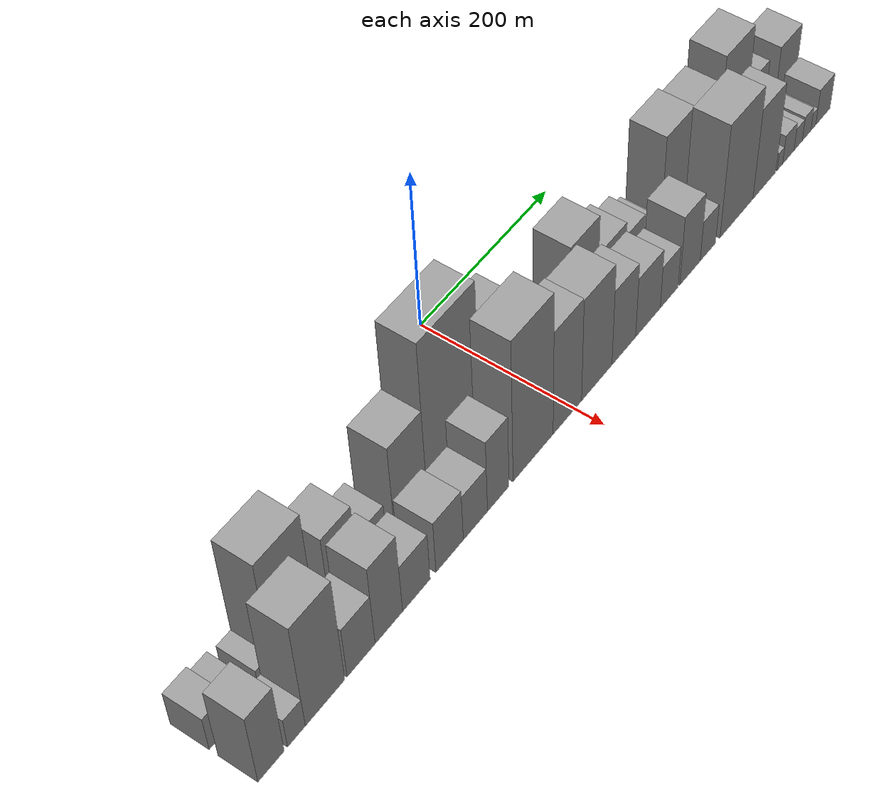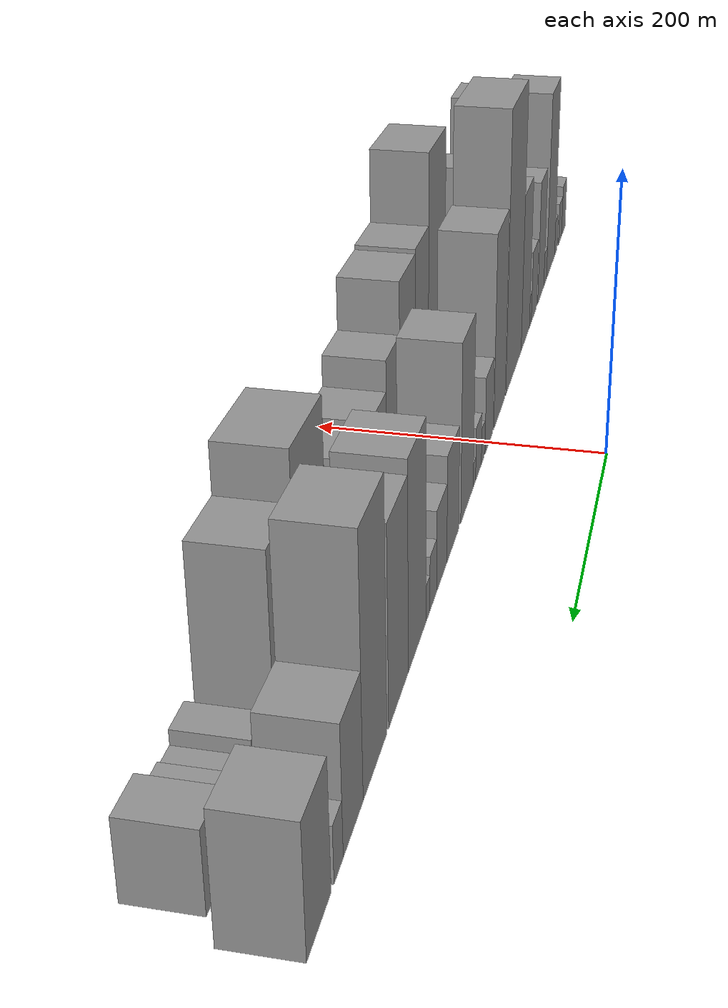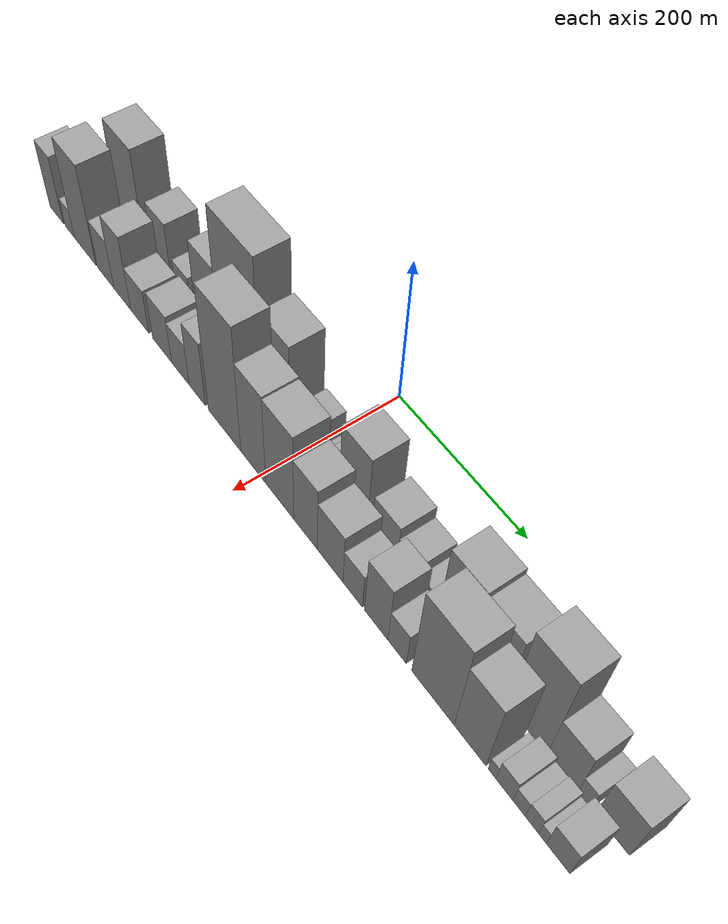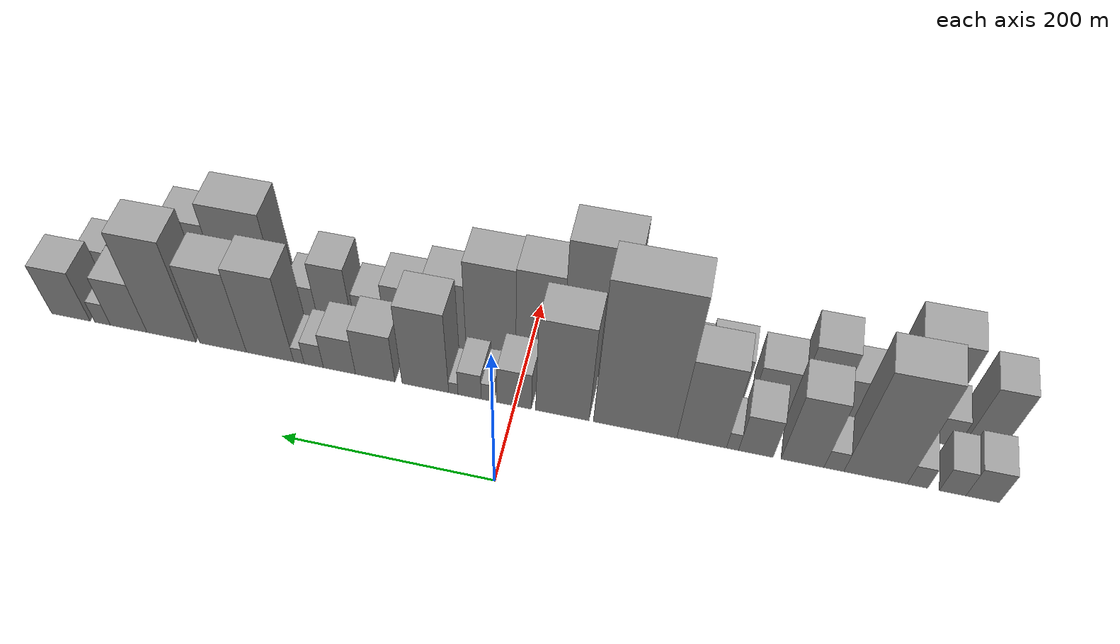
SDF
<sdf version="1.6">
 <world name="default">
  <scene>
   <sky><clouds><speed>12</speed></clouds></sky>
   <ambient>0.4 0.4 0.4 1</ambient>
   <background>0.7 0.7 0.7 1</background>
   <shadows>1</shadows>
  </scene>
  <gravity>0 0 -9.8066</gravity>
  <magnetic_field>6e-06 2.3e-05 -4.2e-05</magnetic_field>
  <physics default="0" name="default_physics" type="ode">
   <ode>
    <solver>
     <type>quick</type>
     <iters>10</iters>
     <sor>1.0</sor>
     <use_dynamic_moi_rescaling>0</use_dynamic_moi_rescaling>
    </solver>
    <constraints>
     <cfm>0</cfm>
     <erp>0.2</erp>
     <contact_max_correcting_vel>100</contact_max_correcting_vel>
     <contact_surface_layer>0.001</contact_surface_layer>
    </constraints>
   </ode>
   <max_step_size>0.004</max_step_size>
   <real_time_factor>1</real_time_factor>
   <real_time_update_rate>250</real_time_update_rate>
  </physics>
  <light name="sun" type="directional">
   <pose>0 0 10 0 0 0</pose>
   <diffuse>0.8 0.8 0.8 1</diffuse>
   <specular>0.2 0.2 0.2 1</specular>
   <attenuation>
    <range>1000</range>
    <constant>0.9</constant>
    <linear>0.01</linear>
    <quadratic>0.001</quadratic>
   </attenuation>
   <direction>-0.5 0.1 -0.9</direction>
  </light>
  <model name="building_1">
   <static>1</static>
   <pose>100.0000 -423.6556 0 0.000000 0.000000 0.000000</pose>
   <link name="link">
    <pose>0 0 24.00 0 0 0</pose>
    <collision name="collision"><geometry><box><size>40.0000 28.6887 48.0000</size></box></geometry></collision>
    <visual name="visual">
     <cast_shadows>0</cast_shadows>
     <geometry><box><size>40.0000 28.6887 48.0000</size></box></geometry>
     <material>
      <script>
       <uri>model://grey_wall/materials/scripts</uri>
       <uri>model://grey_wall/materials/textures</uri>
       <name>vrc/grey_wall</name>
      </script>
     </material>
    </visual>
   </link>
  </model>
  <model name="building_2">
   <static>1</static>
   <pose>100.0000 -397.8716 0 0.000000 0.000000 0.000000</pose>
   <link name="link">
    <pose>0 0 19.50 0 0 0</pose>
    <collision name="collision"><geometry><box><size>40.0000 22.8792 39.0000</size></box></geometry></collision>
    <visual name="visual">
     <cast_shadows>0</cast_shadows>
     <geometry><box><size>40.0000 22.8792 39.0000</size></box></geometry>
     <material>
      <script>
       <uri>model://grey_wall/materials/scripts</uri>
       <uri>model://grey_wall/materials/textures</uri>
       <name>vrc/grey_wall</name>
      </script>
     </material>
    </visual>
   </link>
  </model>
  <model name="building_3">
   <static>1</static>
   <pose>100.0000 -367.3331 0 0.000000 0.000000 0.000000</pose>
   <link name="link">
    <pose>0 0 16.50 0 0 0</pose>
    <collision name="collision"><geometry><box><size>40.0000 18.1978 33.0000</size></box></geometry></collision>
    <visual name="visual">
     <cast_shadows>0</cast_shadows>
     <geometry><box><size>40.0000 18.1978 33.0000</size></box></geometry>
     <material>
      <script>
       <uri>model://grey_wall/materials/scripts</uri>
       <uri>model://grey_wall/materials/textures</uri>
       <name>vrc/grey_wall</name>
      </script>
     </material>
    </visual>
   </link>
  </model>
  <model name="building_4">
   <static>1</static>
   <pose>100.0000 -330.5136 0 0.000000 0.000000 0.000000</pose>
   <link name="link">
    <pose>0 0 81.00 0 0 0</pose>
    <collision name="collision"><geometry><box><size>40.0000 55.4412 162.0000</size></box></geometry></collision>
    <visual name="visual">
     <cast_shadows>0</cast_shadows>
     <geometry><box><size>40.0000 55.4412 162.0000</size></box></geometry>
     <material>
      <script>
       <uri>model://grey_wall/materials/scripts</uri>
       <uri>model://grey_wall/materials/textures</uri>
       <name>vrc/grey_wall</name>
      </script>
     </material>
    </visual>
   </link>
  </model>
  <model name="building_5">
   <static>1</static>
   <pose>100.0000 -293.9951 0 0.000000 0.000000 0.000000</pose>
   <link name="link">
    <pose>0 0 15.00 0 0 0</pose>
    <collision name="collision"><geometry><box><size>40.0000 17.5958 30.0000</size></box></geometry></collision>
    <visual name="visual">
     <cast_shadows>0</cast_shadows>
     <geometry><box><size>40.0000 17.5958 30.0000</size></box></geometry>
     <material>
      <script>
       <uri>model://grey_wall/materials/scripts</uri>
       <uri>model://grey_wall/materials/textures</uri>
       <name>vrc/grey_wall</name>
      </script>
     </material>
    </visual>
   </link>
  </model>
  <model name="building_6">
   <static>1</static>
   <pose>100.0000 -265.9767 0 0.000000 0.000000 0.000000</pose>
   <link name="link">
    <pose>0 0 52.50 0 0 0</pose>
    <collision name="collision"><geometry><box><size>40.0000 38.4410 105.0000</size></box></geometry></collision>
    <visual name="visual">
     <cast_shadows>0</cast_shadows>
     <geometry><box><size>40.0000 38.4410 105.0000</size></box></geometry>
     <material>
      <script>
       <uri>model://grey_wall/materials/scripts</uri>
       <uri>model://grey_wall/materials/textures</uri>
       <name>vrc/grey_wall</name>
      </script>
     </material>
    </visual>
   </link>
  </model>
  <model name="building_7">
   <static>1</static>
   <pose>100.0000 -224.0605 0 0.000000 0.000000 0.000000</pose>
   <link name="link">
    <pose>0 0 30.00 0 0 0</pose>
    <collision name="collision"><geometry><box><size>40.0000 31.3915 60.0000</size></box></geometry></collision>
    <visual name="visual">
     <cast_shadows>0</cast_shadows>
     <geometry><box><size>40.0000 31.3915 60.0000</size></box></geometry>
     <material>
      <script>
       <uri>model://grey_wall/materials/scripts</uri>
       <uri>model://grey_wall/materials/textures</uri>
       <name>vrc/grey_wall</name>
      </script>
     </material>
    </visual>
   </link>
  </model>
  <model name="building_8">
   <static>1</static>
   <pose>100.0000 -202.9169 0 0.000000 0.000000 0.000000</pose>
   <link name="link">
    <pose>0 0 13.50 0 0 0</pose>
    <collision name="collision"><geometry><box><size>40.0000 10.8956 27.0000</size></box></geometry></collision>
    <visual name="visual">
     <cast_shadows>0</cast_shadows>
     <geometry><box><size>40.0000 10.8956 27.0000</size></box></geometry>
     <material>
      <script>
       <uri>model://grey_wall/materials/scripts</uri>
       <uri>model://grey_wall/materials/textures</uri>
       <name>vrc/grey_wall</name>
      </script>
     </material>
    </visual>
   </link>
  </model>
  <model name="building_9">
   <static>1</static>
   <pose>100.0000 -174.7409 0 0.000000 0.000000 0.000000</pose>
   <link name="link">
    <pose>0 0 63.00 0 0 0</pose>
    <collision name="collision"><geometry><box><size>40.0000 45.4563 126.0000</size></box></geometry></collision>
    <visual name="visual">
     <cast_shadows>0</cast_shadows>
     <geometry><box><size>40.0000 45.4563 126.0000</size></box></geometry>
     <material>
      <script>
       <uri>model://grey_wall/materials/scripts</uri>
       <uri>model://grey_wall/materials/textures</uri>
       <name>vrc/grey_wall</name>
      </script>
     </material>
    </visual>
   </link>
  </model>
  <model name="building_10">
   <static>1</static>
   <pose>100.0000 -113.2234 0 0.000000 0.000000 0.000000</pose>
   <link name="link">
    <pose>0 0 106.50 0 0 0</pose>
    <collision name="collision"><geometry><box><size>40.0000 77.5786 213.0000</size></box></geometry></collision>
    <visual name="visual">
     <cast_shadows>0</cast_shadows>
     <geometry><box><size>40.0000 77.5786 213.0000</size></box></geometry>
     <material>
      <script>
       <uri>model://grey_wall/materials/scripts</uri>
       <uri>model://grey_wall/materials/textures</uri>
       <name>vrc/grey_wall</name>
      </script>
     </material>
    </visual>
   </link>
  </model>
  <model name="building_11">
   <static>1</static>
   <pose>100.0000 -45.1588 0 0.000000 0.000000 0.000000</pose>
   <link name="link">
    <pose>0 0 72.00 0 0 0</pose>
    <collision name="collision"><geometry><box><size>40.0000 50.5507 144.0000</size></box></geometry></collision>
    <visual name="visual">
     <cast_shadows>0</cast_shadows>
     <geometry><box><size>40.0000 50.5507 144.0000</size></box></geometry>
     <material>
      <script>
       <uri>model://grey_wall/materials/scripts</uri>
       <uri>model://grey_wall/materials/textures</uri>
       <name>vrc/grey_wall</name>
      </script>
     </material>
    </visual>
   </link>
  </model>
  <model name="building_12">
   <static>1</static>
   <pose>100.0000 0.6023 0 0.000000 0.000000 0.000000</pose>
   <link name="link">
    <pose>0 0 28.50 0 0 0</pose>
    <collision name="collision"><geometry><box><size>40.0000 32.9714 57.0000</size></box></geometry></collision>
    <visual name="visual">
     <cast_shadows>0</cast_shadows>
     <geometry><box><size>40.0000 32.9714 57.0000</size></box></geometry>
     <material>
      <script>
       <uri>model://grey_wall/materials/scripts</uri>
       <uri>model://grey_wall/materials/textures</uri>
       <name>vrc/grey_wall</name>
      </script>
     </material>
    </visual>
   </link>
  </model>
  <model name="building_13">
   <static>1</static>
   <pose>100.0000 26.1027 0 0.000000 0.000000 0.000000</pose>
   <link name="link">
    <pose>0 0 13.50 0 0 0</pose>
    <collision name="collision"><geometry><box><size>40.0000 12.0294 27.0000</size></box></geometry></collision>
    <visual name="visual">
     <cast_shadows>0</cast_shadows>
     <geometry><box><size>40.0000 12.0294 27.0000</size></box></geometry>
     <material>
      <script>
       <uri>model://grey_wall/materials/scripts</uri>
       <uri>model://grey_wall/materials/textures</uri>
       <name>vrc/grey_wall</name>
      </script>
     </material>
    </visual>
   </link>
  </model>
  <model name="building_14">
   <static>1</static>
   <pose>100.0000 43.3374 0 0.000000 0.000000 0.000000</pose>
   <link name="link">
    <pose>0 0 19.50 0 0 0</pose>
    <collision name="collision"><geometry><box><size>40.0000 22.4401 39.0000</size></box></geometry></collision>
    <visual name="visual">
     <cast_shadows>0</cast_shadows>
     <geometry><box><size>40.0000 22.4401 39.0000</size></box></geometry>
     <material>
      <script>
       <uri>model://grey_wall/materials/scripts</uri>
       <uri>model://grey_wall/materials/textures</uri>
       <name>vrc/grey_wall</name>
      </script>
     </material>
    </visual>
   </link>
  </model>
  <model name="building_15">
   <static>1</static>
   <pose>100.0000 59.0498 0 0.000000 0.000000 0.000000</pose>
   <link name="link">
    <pose>0 0 9.00 0 0 0</pose>
    <collision name="collision"><geometry><box><size>40.0000 8.9847 18.0000</size></box></geometry></collision>
    <visual name="visual">
     <cast_shadows>0</cast_shadows>
     <geometry><box><size>40.0000 8.9847 18.0000</size></box></geometry>
     <material>
      <script>
       <uri>model://grey_wall/materials/scripts</uri>
       <uri>model://grey_wall/materials/textures</uri>
       <name>vrc/grey_wall</name>
      </script>
     </material>
    </visual>
   </link>
  </model>
  <model name="building_16">
   <static>1</static>
   <pose>100.0000 86.3163 0 0.000000 0.000000 0.000000</pose>
   <link name="link">
    <pose>0 0 61.50 0 0 0</pose>
    <collision name="collision"><geometry><box><size>40.0000 45.5483 123.0000</size></box></geometry></collision>
    <visual name="visual">
     <cast_shadows>0</cast_shadows>
     <geometry><box><size>40.0000 45.5483 123.0000</size></box></geometry>
     <material>
      <script>
       <uri>model://grey_wall/materials/scripts</uri>
       <uri>model://grey_wall/materials/textures</uri>
       <name>vrc/grey_wall</name>
      </script>
     </material>
    </visual>
   </link>
  </model>
  <model name="building_17">
   <static>1</static>
   <pose>100.0000 135.6190 0 0.000000 0.000000 0.000000</pose>
   <link name="link">
    <pose>0 0 36.00 0 0 0</pose>
    <collision name="collision"><geometry><box><size>40.0000 39.0570 72.0000</size></box></geometry></collision>
    <visual name="visual">
     <cast_shadows>0</cast_shadows>
     <geometry><box><size>40.0000 39.0570 72.0000</size></box></geometry>
     <material>
      <script>
       <uri>model://grey_wall/materials/scripts</uri>
       <uri>model://grey_wall/materials/textures</uri>
       <name>vrc/grey_wall</name>
      </script>
     </material>
    </visual>
   </link>
  </model>
  <model name="building_18">
   <static>1</static>
   <pose>100.0000 171.1100 0 0.000000 0.000000 0.000000</pose>
   <link name="link">
    <pose>0 0 27.00 0 0 0</pose>
    <collision name="collision"><geometry><box><size>40.0000 31.9250 54.0000</size></box></geometry></collision>
    <visual name="visual">
     <cast_shadows>0</cast_shadows>
     <geometry><box><size>40.0000 31.9250 54.0000</size></box></geometry>
     <material>
      <script>
       <uri>model://grey_wall/materials/scripts</uri>
       <uri>model://grey_wall/materials/textures</uri>
       <name>vrc/grey_wall</name>
      </script>
     </material>
    </visual>
   </link>
  </model>
  <model name="building_19">
   <static>1</static>
   <pose>100.0000 196.7690 0 0.000000 0.000000 0.000000</pose>
   <link name="link">
    <pose>0 0 18.00 0 0 0</pose>
    <collision name="collision"><geometry><box><size>40.0000 19.3929 36.0000</size></box></geometry></collision>
    <visual name="visual">
     <cast_shadows>0</cast_shadows>
     <geometry><box><size>40.0000 19.3929 36.0000</size></box></geometry>
     <material>
      <script>
       <uri>model://grey_wall/materials/scripts</uri>
       <uri>model://grey_wall/materials/textures</uri>
       <name>vrc/grey_wall</name>
      </script>
     </material>
    </visual>
   </link>
  </model>
  <model name="building_20">
   <static>1</static>
   <pose>100.0000 211.7643 0 0.000000 0.000000 0.000000</pose>
   <link name="link">
    <pose>0 0 12.00 0 0 0</pose>
    <collision name="collision"><geometry><box><size>40.0000 10.5976 24.0000</size></box></geometry></collision>
    <visual name="visual">
     <cast_shadows>0</cast_shadows>
     <geometry><box><size>40.0000 10.5976 24.0000</size></box></geometry>
     <material>
      <script>
       <uri>model://grey_wall/materials/scripts</uri>
       <uri>model://grey_wall/materials/textures</uri>
       <name>vrc/grey_wall</name>
      </script>
     </material>
    </visual>
   </link>
  </model>
  <model name="building_21">
   <static>1</static>
   <pose>100.0000 240.9793 0 0.000000 0.000000 0.000000</pose>
   <link name="link">
    <pose>0 0 64.50 0 0 0</pose>
    <collision name="collision"><geometry><box><size>40.0000 47.8324 129.0000</size></box></geometry></collision>
    <visual name="visual">
     <cast_shadows>0</cast_shadows>
     <geometry><box><size>40.0000 47.8324 129.0000</size></box></geometry>
     <material>
      <script>
       <uri>model://grey_wall/materials/scripts</uri>
       <uri>model://grey_wall/materials/textures</uri>
       <name>vrc/grey_wall</name>
      </script>
     </material>
    </visual>
   </link>
  </model>
  <model name="building_22">
   <static>1</static>
   <pose>100.0000 288.8334 0 0.000000 0.000000 0.000000</pose>
   <link name="link">
    <pose>0 0 60.00 0 0 0</pose>
    <collision name="collision"><geometry><box><size>40.0000 47.8759 120.0000</size></box></geometry></collision>
    <visual name="visual">
     <cast_shadows>0</cast_shadows>
     <geometry><box><size>40.0000 47.8759 120.0000</size></box></geometry>
     <material>
      <script>
       <uri>model://grey_wall/materials/scripts</uri>
       <uri>model://grey_wall/materials/textures</uri>
       <name>vrc/grey_wall</name>
      </script>
     </material>
    </visual>
   </link>
  </model>
  <model name="building_23">
   <static>1</static>
   <pose>100.0000 342.2572 0 0.000000 0.000000 0.000000</pose>
   <link name="link">
    <pose>0 0 75.00 0 0 0</pose>
    <collision name="collision"><geometry><box><size>40.0000 50.9718 150.0000</size></box></geometry></collision>
    <visual name="visual">
     <cast_shadows>0</cast_shadows>
     <geometry><box><size>40.0000 50.9718 150.0000</size></box></geometry>
     <material>
      <script>
       <uri>model://grey_wall/materials/scripts</uri>
       <uri>model://grey_wall/materials/textures</uri>
       <name>vrc/grey_wall</name>
      </script>
     </material>
    </visual>
   </link>
  </model>
  <model name="building_24">
   <static>1</static>
   <pose>100.0000 386.9692 0 0.000000 0.000000 0.000000</pose>
   <link name="link">
    <pose>0 0 37.50 0 0 0</pose>
    <collision name="collision"><geometry><box><size>40.0000 38.4520 75.0000</size></box></geometry></collision>
    <visual name="visual">
     <cast_shadows>0</cast_shadows>
     <geometry><box><size>40.0000 38.4520 75.0000</size></box></geometry>
     <material>
      <script>
       <uri>model://grey_wall/materials/scripts</uri>
       <uri>model://grey_wall/materials/textures</uri>
       <name>vrc/grey_wall</name>
      </script>
     </material>
    </visual>
   </link>
  </model>
  <model name="building_25">
   <static>1</static>
   <pose>100.0000 414.5128 0 0.000000 0.000000 0.000000</pose>
   <link name="link">
    <pose>0 0 16.50 0 0 0</pose>
    <collision name="collision"><geometry><box><size>40.0000 16.6353 33.0000</size></box></geometry></collision>
    <visual name="visual">
     <cast_shadows>0</cast_shadows>
     <geometry><box><size>40.0000 16.6353 33.0000</size></box></geometry>
     <material>
      <script>
       <uri>model://grey_wall/materials/scripts</uri>
       <uri>model://grey_wall/materials/textures</uri>
       <name>vrc/grey_wall</name>
      </script>
     </material>
    </visual>
   </link>
  </model>
  <model name="building_26">
   <static>1</static>
   <pose>100.0000 448.2294 0 0.000000 0.000000 0.000000</pose>
   <link name="link">
    <pose>0 0 37.50 0 0 0</pose>
    <collision name="collision"><geometry><box><size>40.0000 40.7977 75.0000</size></box></geometry></collision>
    <visual name="visual">
     <cast_shadows>0</cast_shadows>
     <geometry><box><size>40.0000 40.7977 75.0000</size></box></geometry>
     <material>
      <script>
       <uri>model://grey_wall/materials/scripts</uri>
       <uri>model://grey_wall/materials/textures</uri>
       <name>vrc/grey_wall</name>
      </script>
     </material>
    </visual>
   </link>
  </model>
  <model name="building_27">
   <static>1</static>
   <pose>149.0000 -421.8023 0 0.000000 0.000000 0.000000</pose>
   <link name="link">
    <pose>0 0 49.50 0 0 0</pose>
    <collision name="collision"><geometry><box><size>40.0000 32.3954 99.0000</size></box></geometry></collision>
    <visual name="visual">
     <cast_shadows>0</cast_shadows>
     <geometry><box><size>40.0000 32.3954 99.0000</size></box></geometry>
     <material>
      <script>
       <uri>model://grey_wall/materials/scripts</uri>
       <uri>model://grey_wall/materials/textures</uri>
       <name>vrc/grey_wall</name>
      </script>
     </material>
    </visual>
   </link>
  </model>
  <model name="building_28">
   <static>1</static>
   <pose>149.0000 -390.4659 0 0.000000 0.000000 0.000000</pose>
   <link name="link">
    <pose>0 0 21.00 0 0 0</pose>
    <collision name="collision"><geometry><box><size>40.0000 22.2773 42.0000</size></box></geometry></collision>
    <visual name="visual">
     <cast_shadows>0</cast_shadows>
     <geometry><box><size>40.0000 22.2773 42.0000</size></box></geometry>
     <material>
      <script>
       <uri>model://grey_wall/materials/scripts</uri>
       <uri>model://grey_wall/materials/textures</uri>
       <name>vrc/grey_wall</name>
      </script>
     </material>
    </visual>
   </link>
  </model>
  <model name="building_29">
   <static>1</static>
   <pose>149.0000 -354.1572 0 0.000000 0.000000 0.000000</pose>
   <link name="link">
    <pose>0 0 73.50 0 0 0</pose>
    <collision name="collision"><geometry><box><size>40.0000 50.3402 147.0000</size></box></geometry></collision>
    <visual name="visual">
     <cast_shadows>0</cast_shadows>
     <geometry><box><size>40.0000 50.3402 147.0000</size></box></geometry>
     <material>
      <script>
       <uri>model://grey_wall/materials/scripts</uri>
       <uri>model://grey_wall/materials/textures</uri>
       <name>vrc/grey_wall</name>
      </script>
     </material>
    </visual>
   </link>
  </model>
  <model name="building_30">
   <static>1</static>
   <pose>149.0000 -307.5326 0 0.000000 0.000000 0.000000</pose>
   <link name="link">
    <pose>0 0 36.00 0 0 0</pose>
    <collision name="collision"><geometry><box><size>40.0000 36.9091 72.0000</size></box></geometry></collision>
    <visual name="visual">
     <cast_shadows>0</cast_shadows>
     <geometry><box><size>40.0000 36.9091 72.0000</size></box></geometry>
     <material>
      <script>
       <uri>model://grey_wall/materials/scripts</uri>
       <uri>model://grey_wall/materials/textures</uri>
       <name>vrc/grey_wall</name>
      </script>
     </material>
    </visual>
   </link>
  </model>
  <model name="building_31">
   <static>1</static>
   <pose>149.0000 -270.6092 0 0.000000 0.000000 0.000000</pose>
   <link name="link">
    <pose>0 0 55.50 0 0 0</pose>
    <collision name="collision"><geometry><box><size>40.0000 36.9377 111.0000</size></box></geometry></collision>
    <visual name="visual">
     <cast_shadows>0</cast_shadows>
     <geometry><box><size>40.0000 36.9377 111.0000</size></box></geometry>
     <material>
      <script>
       <uri>model://grey_wall/materials/scripts</uri>
       <uri>model://grey_wall/materials/textures</uri>
       <name>vrc/grey_wall</name>
      </script>
     </material>
    </visual>
   </link>
  </model>
  <model name="building_32">
   <static>1</static>
   <pose>149.0000 -233.1537 0 0.000000 0.000000 0.000000</pose>
   <link name="link">
    <pose>0 0 33.00 0 0 0</pose>
    <collision name="collision"><geometry><box><size>40.0000 37.9732 66.0000</size></box></geometry></collision>
    <visual name="visual">
     <cast_shadows>0</cast_shadows>
     <geometry><box><size>40.0000 37.9732 66.0000</size></box></geometry>
     <material>
      <script>
       <uri>model://grey_wall/materials/scripts</uri>
       <uri>model://grey_wall/materials/textures</uri>
       <name>vrc/grey_wall</name>
      </script>
     </material>
    </visual>
   </link>
  </model>
  <model name="building_33">
   <static>1</static>
   <pose>149.0000 -186.8201 0 0.000000 0.000000 0.000000</pose>
   <link name="link">
    <pose>0 0 36.00 0 0 0</pose>
    <collision name="collision"><geometry><box><size>40.0000 38.6940 72.0000</size></box></geometry></collision>
    <visual name="visual">
     <cast_shadows>0</cast_shadows>
     <geometry><box><size>40.0000 38.6940 72.0000</size></box></geometry>
     <material>
      <script>
       <uri>model://grey_wall/materials/scripts</uri>
       <uri>model://grey_wall/materials/textures</uri>
       <name>vrc/grey_wall</name>
      </script>
     </material>
    </visual>
   </link>
  </model>
  <model name="building_34">
   <static>1</static>
   <pose>149.0000 -149.9987 0 0.000000 0.000000 0.000000</pose>
   <link name="link">
    <pose>0 0 31.50 0 0 0</pose>
    <collision name="collision"><geometry><box><size>40.0000 34.9489 63.0000</size></box></geometry></collision>
    <visual name="visual">
     <cast_shadows>0</cast_shadows>
     <geometry><box><size>40.0000 34.9489 63.0000</size></box></geometry>
     <material>
      <script>
       <uri>model://grey_wall/materials/scripts</uri>
       <uri>model://grey_wall/materials/textures</uri>
       <name>vrc/grey_wall</name>
      </script>
     </material>
    </visual>
   </link>
  </model>
  <model name="building_35">
   <static>1</static>
   <pose>149.0000 -116.6894 0 0.000000 0.000000 0.000000</pose>
   <link name="link">
    <pose>0 0 49.50 0 0 0</pose>
    <collision name="collision"><geometry><box><size>40.0000 31.6697 99.0000</size></box></geometry></collision>
    <visual name="visual">
     <cast_shadows>0</cast_shadows>
     <geometry><box><size>40.0000 31.6697 99.0000</size></box></geometry>
     <material>
      <script>
       <uri>model://grey_wall/materials/scripts</uri>
       <uri>model://grey_wall/materials/textures</uri>
       <name>vrc/grey_wall</name>
      </script>
     </material>
    </visual>
   </link>
  </model>
  <model name="building_36">
   <static>1</static>
   <pose>149.0000 -64.4951 0 0.000000 0.000000 0.000000</pose>
   <link name="link">
    <pose>0 0 96.00 0 0 0</pose>
    <collision name="collision"><geometry><box><size>40.0000 60.7190 192.0000</size></box></geometry></collision>
    <visual name="visual">
     <cast_shadows>0</cast_shadows>
     <geometry><box><size>40.0000 60.7190 192.0000</size></box></geometry>
     <material>
      <script>
       <uri>model://grey_wall/materials/scripts</uri>
       <uri>model://grey_wall/materials/textures</uri>
       <name>vrc/grey_wall</name>
      </script>
     </material>
    </visual>
   </link>
  </model>
  <model name="building_37">
   <static>1</static>
   <pose>149.0000 -11.9089 0 0.000000 0.000000 0.000000</pose>
   <link name="link">
    <pose>0 0 70.50 0 0 0</pose>
    <collision name="collision"><geometry><box><size>40.0000 44.4533 141.0000</size></box></geometry></collision>
    <visual name="visual">
     <cast_shadows>0</cast_shadows>
     <geometry><box><size>40.0000 44.4533 141.0000</size></box></geometry>
     <material>
      <script>
       <uri>model://grey_wall/materials/scripts</uri>
       <uri>model://grey_wall/materials/textures</uri>
       <name>vrc/grey_wall</name>
      </script>
     </material>
    </visual>
   </link>
  </model>
  <model name="building_38">
   <static>1</static>
   <pose>149.0000 34.6893 0 0.000000 0.000000 0.000000</pose>
   <link name="link">
    <pose>0 0 69.00 0 0 0</pose>
    <collision name="collision"><geometry><box><size>40.0000 48.7433 138.0000</size></box></geometry></collision>
    <visual name="visual">
     <cast_shadows>0</cast_shadows>
     <geometry><box><size>40.0000 48.7433 138.0000</size></box></geometry>
     <material>
      <script>
       <uri>model://grey_wall/materials/scripts</uri>
       <uri>model://grey_wall/materials/textures</uri>
       <name>vrc/grey_wall</name>
      </script>
     </material>
    </visual>
   </link>
  </model>
  <model name="building_39">
   <static>1</static>
   <pose>149.0000 78.5258 0 0.000000 0.000000 0.000000</pose>
   <link name="link">
    <pose>0 0 51.00 0 0 0</pose>
    <collision name="collision"><geometry><box><size>40.0000 38.9297 102.0000</size></box></geometry></collision>
    <visual name="visual">
     <cast_shadows>0</cast_shadows>
     <geometry><box><size>40.0000 38.9297 102.0000</size></box></geometry>
     <material>
      <script>
       <uri>model://grey_wall/materials/scripts</uri>
       <uri>model://grey_wall/materials/textures</uri>
       <name>vrc/grey_wall</name>
      </script>
     </material>
    </visual>
   </link>
  </model>
  <model name="building_40">
   <static>1</static>
   <pose>149.0000 118.7123 0 0.000000 0.000000 0.000000</pose>
   <link name="link">
    <pose>0 0 40.50 0 0 0</pose>
    <collision name="collision"><geometry><box><size>40.0000 41.4432 81.0000</size></box></geometry></collision>
    <visual name="visual">
     <cast_shadows>0</cast_shadows>
     <geometry><box><size>40.0000 41.4432 81.0000</size></box></geometry>
     <material>
      <script>
       <uri>model://grey_wall/materials/scripts</uri>
       <uri>model://grey_wall/materials/textures</uri>
       <name>vrc/grey_wall</name>
      </script>
     </material>
    </visual>
   </link>
  </model>
  <model name="building_41">
   <static>1</static>
   <pose>149.0000 154.7037 0 0.000000 0.000000 0.000000</pose>
   <link name="link">
    <pose>0 0 28.50 0 0 0</pose>
    <collision name="collision"><geometry><box><size>40.0000 30.5398 57.0000</size></box></geometry></collision>
    <visual name="visual">
     <cast_shadows>0</cast_shadows>
     <geometry><box><size>40.0000 30.5398 57.0000</size></box></geometry>
     <material>
      <script>
       <uri>model://grey_wall/materials/scripts</uri>
       <uri>model://grey_wall/materials/textures</uri>
       <name>vrc/grey_wall</name>
      </script>
     </material>
    </visual>
   </link>
  </model>
  <model name="building_42">
   <static>1</static>
   <pose>149.0000 190.7265 0 0.000000 0.000000 0.000000</pose>
   <link name="link">
    <pose>0 0 46.50 0 0 0</pose>
    <collision name="collision"><geometry><box><size>40.0000 35.5057 93.0000</size></box></geometry></collision>
    <visual name="visual">
     <cast_shadows>0</cast_shadows>
     <geometry><box><size>40.0000 35.5057 93.0000</size></box></geometry>
     <material>
      <script>
       <uri>model://grey_wall/materials/scripts</uri>
       <uri>model://grey_wall/materials/textures</uri>
       <name>vrc/grey_wall</name>
      </script>
     </material>
    </visual>
   </link>
  </model>
  <model name="building_43">
   <static>1</static>
   <pose>149.0000 222.1481 0 0.000000 0.000000 0.000000</pose>
   <link name="link">
    <pose>0 0 27.00 0 0 0</pose>
    <collision name="collision"><geometry><box><size>40.0000 27.3376 54.0000</size></box></geometry></collision>
    <visual name="visual">
     <cast_shadows>0</cast_shadows>
     <geometry><box><size>40.0000 27.3376 54.0000</size></box></geometry>
     <material>
      <script>
       <uri>model://grey_wall/materials/scripts</uri>
       <uri>model://grey_wall/materials/textures</uri>
       <name>vrc/grey_wall</name>
      </script>
     </material>
    </visual>
   </link>
  </model>
  <model name="building_44">
   <static>1</static>
   <pose>149.0000 273.7868 0 0.000000 0.000000 0.000000</pose>
   <link name="link">
    <pose>0 0 75.00 0 0 0</pose>
    <collision name="collision"><geometry><box><size>40.0000 59.9398 150.0000</size></box></geometry></collision>
    <visual name="visual">
     <cast_shadows>0</cast_shadows>
     <geometry><box><size>40.0000 59.9398 150.0000</size></box></geometry>
     <material>
      <script>
       <uri>model://grey_wall/materials/scripts</uri>
       <uri>model://grey_wall/materials/textures</uri>
       <name>vrc/grey_wall</name>
      </script>
     </material>
    </visual>
   </link>
  </model>
  <model name="building_45">
   <static>1</static>
   <pose>149.0000 325.1257 0 0.000000 0.000000 0.000000</pose>
   <link name="link">
    <pose>0 0 60.00 0 0 0</pose>
    <collision name="collision"><geometry><box><size>40.0000 42.7380 120.0000</size></box></geometry></collision>
    <visual name="visual">
     <cast_shadows>0</cast_shadows>
     <geometry><box><size>40.0000 42.7380 120.0000</size></box></geometry>
     <material>
      <script>
       <uri>model://grey_wall/materials/scripts</uri>
       <uri>model://grey_wall/materials/textures</uri>
       <name>vrc/grey_wall</name>
      </script>
     </material>
    </visual>
   </link>
  </model>
  <model name="building_46">
   <static>1</static>
   <pose>149.0000 354.5893 0 0.000000 0.000000 0.000000</pose>
   <link name="link">
    <pose>0 0 12.00 0 0 0</pose>
    <collision name="collision"><geometry><box><size>40.0000 10.1891 24.0000</size></box></geometry></collision>
    <visual name="visual">
     <cast_shadows>0</cast_shadows>
     <geometry><box><size>40.0000 10.1891 24.0000</size></box></geometry>
     <material>
      <script>
       <uri>model://grey_wall/materials/scripts</uri>
       <uri>model://grey_wall/materials/textures</uri>
       <name>vrc/grey_wall</name>
      </script>
     </material>
    </visual>
   </link>
  </model>
  <model name="building_47">
   <static>1</static>
   <pose>149.0000 370.6328 0 0.000000 0.000000 0.000000</pose>
   <link name="link">
    <pose>0 0 19.50 0 0 0</pose>
    <collision name="collision"><geometry><box><size>40.0000 21.8979 39.0000</size></box></geometry></collision>
    <visual name="visual">
     <cast_shadows>0</cast_shadows>
     <geometry><box><size>40.0000 21.8979 39.0000</size></box></geometry>
     <material>
      <script>
       <uri>model://grey_wall/materials/scripts</uri>
       <uri>model://grey_wall/materials/textures</uri>
       <name>vrc/grey_wall</name>
      </script>
     </material>
    </visual>
   </link>
  </model>
  <model name="building_48">
   <static>1</static>
   <pose>149.0000 389.5400 0 0.000000 0.000000 0.000000</pose>
   <link name="link">
    <pose>0 0 15.00 0 0 0</pose>
    <collision name="collision"><geometry><box><size>40.0000 15.9164 30.0000</size></box></geometry></collision>
    <visual name="visual">
     <cast_shadows>0</cast_shadows>
     <geometry><box><size>40.0000 15.9164 30.0000</size></box></geometry>
     <material>
      <script>
       <uri>model://grey_wall/materials/scripts</uri>
       <uri>model://grey_wall/materials/textures</uri>
       <name>vrc/grey_wall</name>
      </script>
     </material>
    </visual>
   </link>
  </model>
  <model name="building_49">
   <static>1</static>
   <pose>149.0000 405.7886 0 0.000000 0.000000 0.000000</pose>
   <link name="link">
    <pose>0 0 16.50 0 0 0</pose>
    <collision name="collision"><geometry><box><size>40.0000 16.5807 33.0000</size></box></geometry></collision>
    <visual name="visual">
     <cast_shadows>0</cast_shadows>
     <geometry><box><size>40.0000 16.5807 33.0000</size></box></geometry>
     <material>
      <script>
       <uri>model://grey_wall/materials/scripts</uri>
       <uri>model://grey_wall/materials/textures</uri>
       <name>vrc/grey_wall</name>
      </script>
     </material>
    </visual>
   </link>
  </model>
  <model name="building_50">
   <static>1</static>
   <pose>149.0000 418.8974 0 0.000000 0.000000 0.000000</pose>
   <link name="link">
    <pose>0 0 12.00 0 0 0</pose>
    <collision name="collision"><geometry><box><size>40.0000 9.6369 24.0000</size></box></geometry></collision>
    <visual name="visual">
     <cast_shadows>0</cast_shadows>
     <geometry><box><size>40.0000 9.6369 24.0000</size></box></geometry>
     <material>
      <script>
       <uri>model://grey_wall/materials/scripts</uri>
       <uri>model://grey_wall/materials/textures</uri>
       <name>vrc/grey_wall</name>
      </script>
     </material>
    </visual>
   </link>
  </model>
  <model name="building_51">
   <static>1</static>
   <pose>149.0000 438.0199 0 0.000000 0.000000 0.000000</pose>
   <link name="link">
    <pose>0 0 24.00 0 0 0</pose>
    <collision name="collision"><geometry><box><size>40.0000 28.6080 48.0000</size></box></geometry></collision>
    <visual name="visual">
     <cast_shadows>0</cast_shadows>
     <geometry><box><size>40.0000 28.6080 48.0000</size></box></geometry>
     <material>
      <script>
       <uri>model://grey_wall/materials/scripts</uri>
       <uri>model://grey_wall/materials/textures</uri>
       <name>vrc/grey_wall</name>
      </script>
     </material>
    </visual>
   </link>
  </model>
 </world>
</sdf>
